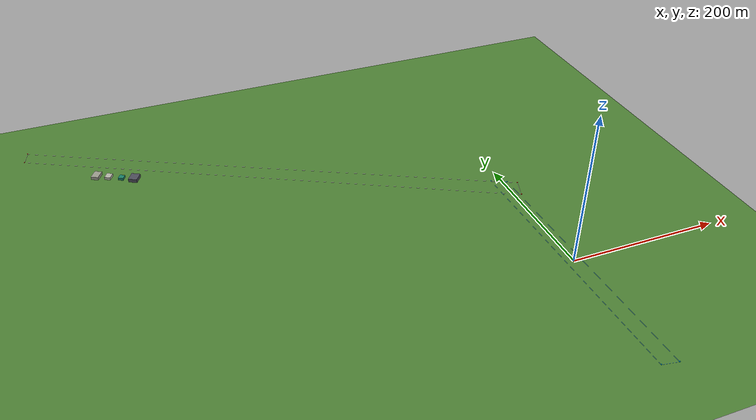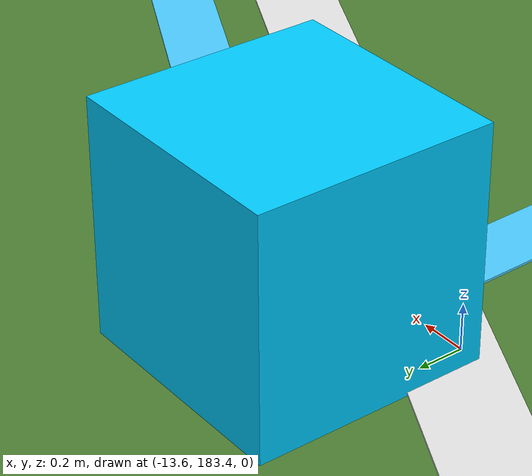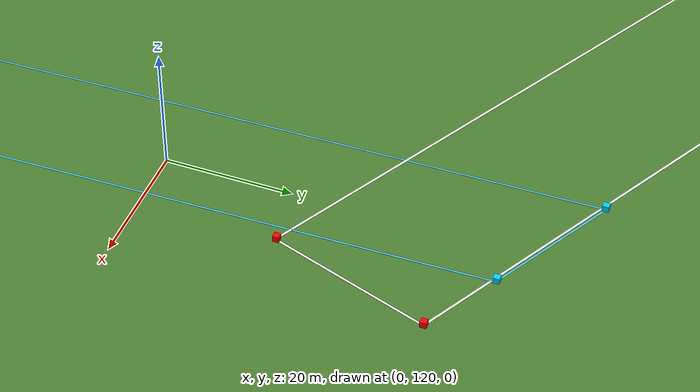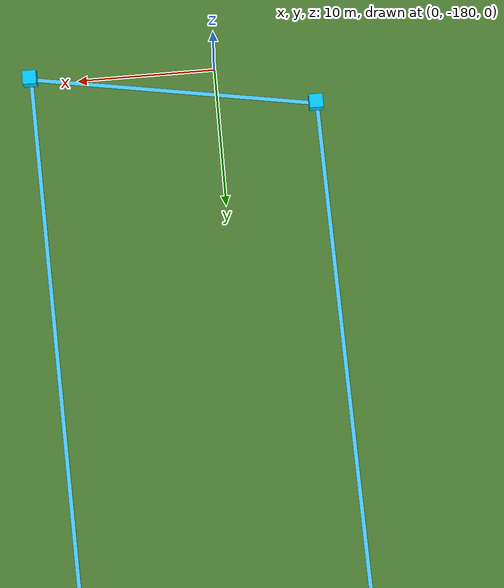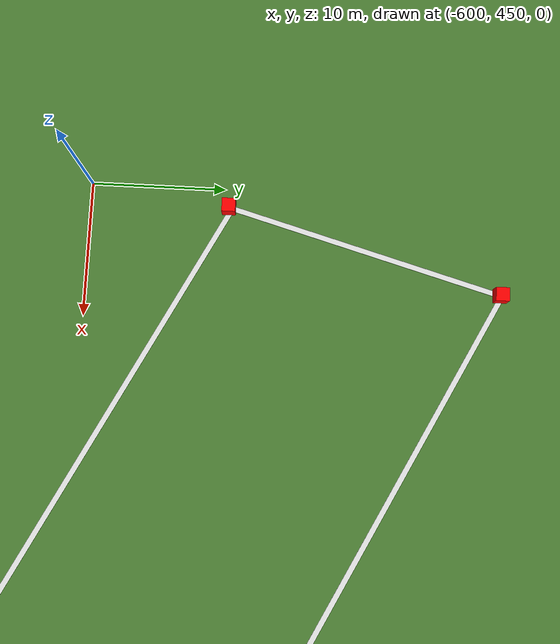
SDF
<?xml version="1.0" ?>
<sdf version="1.8">
    <world name="map">
        <physics name="1ms" type="ignored">
            <max_step_size>0.001</max_step_size>
            <real_time_factor>1.0</real_time_factor>
        </physics>

        <plugin filename="libgz-sim-physics-system.so" name="gz::sim::systems::Physics">
        </plugin>
        <plugin filename="libgz-sim-user-commands-system.so" name="gz::sim::systems::UserCommands">
        </plugin>
        <plugin filename="libgz-sim-scene-broadcaster-system.so" name="gz::sim::systems::SceneBroadcaster">
        </plugin>

        <plugin filename="libgz-sim-navsat-system" name="gz::sim::systems::NavSat">
        </plugin>
        <plugin filename="libgz-sim-imu-system.so" name="gz::sim::systems::Imu">
        </plugin>

        <!-- CDS2 airstrip — Disley, Saskatchewan -->
        <!-- Origin MUST match navsat_transform datum for visual/toolpath alignment -->
        <spherical_coordinates>
            <surface_model>EARTH_WGS84</surface_model>
            <world_frame_orientation>ENU</world_frame_orientation>
            <latitude_deg>50.63447</latitude_deg>
            <longitude_deg>-105.03184</longitude_deg>
            <elevation>566</elevation>
            <heading_deg>0</heading_deg>
        </spherical_coordinates>

        <light type="directional" name="sun">
            <cast_shadows>true</cast_shadows>
            <pose>0 0 10 0 0 0</pose>
            <diffuse>0.8 0.8 0.8 1</diffuse>
            <specular>0.2 0.2 0.2 1</specular>
            <direction>-0.5 0.1 -0.9</direction>
        </light>

        <!-- Ground plane — flat grass field -->
        <model name="ground_plane">
            <static>true</static>
            <link name="link">
                <collision name="collision">
                    <geometry>
                        <plane>
                            <normal>0 0 1</normal>
                            <size>2000 2000</size>
                        </plane>
                    </geometry>
                    <surface>
                        <friction>
                            <ode>
                                <mu>1.0</mu>
                                <mu2>1.0</mu2>
                            </ode>
                        </friction>
                    </surface>
                </collision>
                <visual name="visual">
                    <geometry>
                        <plane>
                            <normal>0 0 1</normal>
                            <size>2000 2000</size>
                        </plane>
                    </geometry>
                    <material>
                        <ambient>0.3 0.5 0.2 1</ambient>
                        <diffuse>0.3 0.5 0.2 1</diffuse>
                        <specular>0.01 0.01 0.01 1</specular>
                    </material>
                </visual>
            </link>
        </model>

        <!-- Runway 11/29 mowing polygon boundary (approx ENU from datum) -->
        <!-- C1 NW (-598.6, 460.3)  C2 NE (-592.9, 480.6)               -->
        <!-- C4 SW (9.7, 141.7)     C3 SE (18.1, 167.3)                  -->

        <!-- North edge: C2→C3 — length 686.7m, yaw=atan2(-dx,dy) -->
        <model name="edge_north">
            <static>true</static>
            <pose>-287.4 324.0 0.01 0 0 -2.045</pose>
            <link name="link">
                <visual name="visual">
                    <geometry>
                        <box><size>0.4 686.7 0.01</size></box>
                    </geometry>
                    <material>
                        <ambient>0.9 0.9 0.9 1</ambient>
                        <diffuse>0.9 0.9 0.9 1</diffuse>
                    </material>
                </visual>
            </link>
        </model>

        <!-- South edge: C1→C4 — length 686.7m -->
        <model name="edge_south">
            <static>true</static>
            <pose>-294.5 301.0 0.01 0 0 -2.054</pose>
            <link name="link">
                <visual name="visual">
                    <geometry>
                        <box><size>0.4 686.7 0.01</size></box>
                    </geometry>
                    <material>
                        <ambient>0.9 0.9 0.9 1</ambient>
                        <diffuse>0.9 0.9 0.9 1</diffuse>
                    </material>
                </visual>
            </link>
        </model>

        <!-- West end: C1→C2 — length 21.1m -->
        <model name="edge_west">
            <static>true</static>
            <pose>-595.8 470.5 0.01 0 0 -0.274</pose>
            <link name="link">
                <visual name="visual">
                    <geometry>
                        <box><size>0.4 21.1 0.01</size></box>
                    </geometry>
                    <material>
                        <ambient>0.9 0.9 0.9 1</ambient>
                        <diffuse>0.9 0.9 0.9 1</diffuse>
                    </material>
                </visual>
            </link>
        </model>

        <!-- East end: C4→C3 — length 26.9m -->
        <model name="edge_east">
            <static>true</static>
            <pose>13.9 154.5 0.01 0 0 -0.317</pose>
            <link name="link">
                <visual name="visual">
                    <geometry>
                        <box><size>0.4 26.9 0.01</size></box>
                    </geometry>
                    <material>
                        <ambient>0.9 0.9 0.9 1</ambient>
                        <diffuse>0.9 0.9 0.9 1</diffuse>
                    </material>
                </visual>
            </link>
        </model>

        <!-- Corner markers — bright red cubes at polygon corners -->
        <model name="corner_c1_nw">
            <static>true</static>
            <pose>-598.6 460.3 0.5 0 0 0</pose>
            <link name="link">
                <visual name="visual">
                    <geometry><box><size>1 1 1</size></box></geometry>
                    <material>
                        <ambient>1.0 0.0 0.0 1</ambient>
                        <diffuse>1.0 0.0 0.0 1</diffuse>
                    </material>
                </visual>
            </link>
        </model>
        <model name="corner_c2_ne">
            <static>true</static>
            <pose>-592.9 480.6 0.5 0 0 0</pose>
            <link name="link">
                <visual name="visual">
                    <geometry><box><size>1 1 1</size></box></geometry>
                    <material>
                        <ambient>1.0 0.0 0.0 1</ambient>
                        <diffuse>1.0 0.0 0.0 1</diffuse>
                    </material>
                </visual>
            </link>
        </model>
        <model name="corner_c3_se">
            <static>true</static>
            <pose>18.1 167.3 0.5 0 0 0</pose>
            <link name="link">
                <visual name="visual">
                    <geometry><box><size>1 1 1</size></box></geometry>
                    <material>
                        <ambient>1.0 0.0 0.0 1</ambient>
                        <diffuse>1.0 0.0 0.0 1</diffuse>
                    </material>
                </visual>
            </link>
        </model>
        <model name="corner_c4_sw">
            <static>true</static>
            <pose>9.7 141.7 0.5 0 0 0</pose>
            <link name="link">
                <visual name="visual">
                    <geometry><box><size>1 1 1</size></box></geometry>
                    <material>
                        <ambient>1.0 0.0 0.0 1</ambient>
                        <diffuse>1.0 0.0 0.0 1</diffuse>
                    </material>
                </visual>
            </link>
        </model>

        <!-- Hangars — 4 buildings south of runway 11/29, near NW end     -->
        <!-- All NW faces aligned at 22.7m perpendicular from south edge  -->
        <!-- Oriented parallel to runway (heading 120° = yaw -0.52 rad)   -->
        <!-- Order along runway NW→SE: large, middle, green, new          -->

        <!-- Hangar 1 — large, westernmost of original three -->
        <model name="hangar_large">
            <static>true</static>
            <pose>-509.1 387.5 2.25 0 0 -0.52</pose>
            <link name="link">
                <collision name="collision">
                    <geometry><box><size>10 14 4.5</size></box></geometry>
                </collision>
                <visual name="visual">
                    <geometry><box><size>10 14 4.5</size></box></geometry>
                    <material>
                        <ambient>0.6 0.6 0.55 1</ambient>
                        <diffuse>0.6 0.6 0.55 1</diffuse>
                    </material>
                </visual>
            </link>
        </model>

        <!-- Hangar 2 — medium size -->
        <model name="hangar_middle">
            <static>true</static>
            <pose>-494.0 379.6 2.0 0 0 -0.52</pose>
            <link name="link">
                <collision name="collision">
                    <geometry><box><size>8 10 4.0</size></box></geometry>
                </collision>
                <visual name="visual">
                    <geometry><box><size>8 10 4.0</size></box></geometry>
                    <material>
                        <ambient>0.7 0.7 0.65 1</ambient>
                        <diffuse>0.7 0.7 0.65 1</diffuse>
                    </material>
                </visual>
            </link>
        </model>

        <!-- Hangar 3 — green hangar (user's) -->
        <model name="hangar_green">
            <static>true</static>
            <pose>-478.0 371.2 1.75 0 0 -0.52</pose>
            <link name="link">
                <collision name="collision">
                    <geometry><box><size>7 8 3.5</size></box></geometry>
                </collision>
                <visual name="visual">
                    <geometry><box><size>7 8 3.5</size></box></geometry>
                    <material>
                        <ambient>0.1 0.5 0.4 1</ambient>
                        <diffuse>0.1 0.5 0.4 1</diffuse>
                    </material>
                </visual>
            </link>
        </model>

        <!-- Hangar 4 — newest, largest, dark roof -->
        <model name="hangar_new">
            <static>true</static>
            <pose>-462.1 362.9 2.5 0 0 -0.52</pose>
            <link name="link">
                <collision name="collision">
                    <geometry><box><size>12 14 5.0</size></box></geometry>
                </collision>
                <visual name="visual">
                    <geometry><box><size>12 14 5.0</size></box></geometry>
                    <material>
                        <ambient>0.3 0.3 0.35 1</ambient>
                        <diffuse>0.3 0.3 0.35 1</diffuse>
                    </material>
                </visual>
            </link>
        </model>

        <!-- Start/park marker — yellow cube in front of hangar 3 (green) -->
        <!-- 8m toward runway (NW) from hangar center -->
        <model name="start_marker">
            <static>true</static>
            <pose>-474.3 378.3 0.5 0 0 0</pose>
            <link name="link">
                <visual name="visual">
                    <geometry><box><size>1 1 1</size></box></geometry>
                    <material>
                        <ambient>1.0 1.0 0.0 1</ambient>
                        <diffuse>1.0 1.0 0.0 1</diffuse>
                    </material>
                </visual>
            </link>
        </model>

        <!-- Runway 17/35 mowing polygon boundary (approx ENU from datum) -->
        <!-- Runway heading 179° mag, runs almost N-S                     -->

        <!-- West edge: C1→C4 — length 360.8m -->
        <model name="rwy1735_edge_west">
            <static>true</static>
            <pose>-10.2 3.5 0.01 0 0 -3.125</pose>
            <link name="link">
                <visual name="visual">
                    <geometry>
                        <box><size>0.3 360.8 0.01</size></box>
                    </geometry>
                    <material>
                        <ambient>0.3 0.8 1.0 1</ambient>
                        <diffuse>0.3 0.8 1.0 1</diffuse>
                    </material>
                </visual>
            </link>
        </model>

        <!-- East edge: C2→C3 — length 354.7m -->
        <model name="rwy1735_edge_east">
            <static>true</static>
            <pose>9.9 -3.3 0.01 0 0 -3.122</pose>
            <link name="link">
                <visual name="visual">
                    <geometry>
                        <box><size>0.3 354.7 0.01</size></box>
                    </geometry>
                    <material>
                        <ambient>0.3 0.8 1.0 1</ambient>
                        <diffuse>0.3 0.8 1.0 1</diffuse>
                    </material>
                </visual>
            </link>
        </model>

        <!-- North edge: C1→C2 — length 21.9m -->
        <model name="rwy1735_edge_north">
            <static>true</static>
            <pose>-3.5 178.9 0.01 0 0 -2.046</pose>
            <link name="link">
                <visual name="visual">
                    <geometry>
                        <box><size>0.3 21.9 0.01</size></box>
                    </geometry>
                    <material>
                        <ambient>0.3 0.8 1.0 1</ambient>
                        <diffuse>0.3 0.8 1.0 1</diffuse>
                    </material>
                </visual>
            </link>
        </model>

        <!-- South edge: C4→C3 — length 20.8m -->
        <model name="rwy1735_edge_south">
            <static>true</static>
            <pose>3.2 -178.7 0.01 0 0 -1.740</pose>
            <link name="link">
                <visual name="visual">
                    <geometry>
                        <box><size>0.3 20.8 0.01</size></box>
                    </geometry>
                    <material>
                        <ambient>0.3 0.8 1.0 1</ambient>
                        <diffuse>0.3 0.8 1.0 1</diffuse>
                    </material>
                </visual>
            </link>
        </model>

        <!-- Corner markers — cyan cubes at 17/35 polygon corners -->
        <model name="rwy1735_c1_nw">
            <static>true</static>
            <pose>-13.2 183.9 0.5 0 0 0</pose>
            <link name="link">
                <visual name="visual">
                    <geometry><box><size>1 1 1</size></box></geometry>
                    <material>
                        <ambient>0.0 0.8 1.0 1</ambient>
                        <diffuse>0.0 0.8 1.0 1</diffuse>
                    </material>
                </visual>
            </link>
        </model>
        <model name="rwy1735_c2_ne">
            <static>true</static>
            <pose>6.3 173.9 0.5 0 0 0</pose>
            <link name="link">
                <visual name="visual">
                    <geometry><box><size>1 1 1</size></box></geometry>
                    <material>
                        <ambient>0.0 0.8 1.0 1</ambient>
                        <diffuse>0.0 0.8 1.0 1</diffuse>
                    </material>
                </visual>
            </link>
        </model>
        <model name="rwy1735_c3_se">
            <static>true</static>
            <pose>13.4 -180.4 0.5 0 0 0</pose>
            <link name="link">
                <visual name="visual">
                    <geometry><box><size>1 1 1</size></box></geometry>
                    <material>
                        <ambient>0.0 0.8 1.0 1</ambient>
                        <diffuse>0.0 0.8 1.0 1</diffuse>
                    </material>
                </visual>
            </link>
        </model>
        <model name="rwy1735_c4_sw">
            <static>true</static>
            <pose>-7.1 -176.9 0.5 0 0 0</pose>
            <link name="link">
                <visual name="visual">
                    <geometry><box><size>1 1 1</size></box></geometry>
                    <material>
                        <ambient>0.0 0.8 1.0 1</ambient>
                        <diffuse>0.0 0.8 1.0 1</diffuse>
                    </material>
                </visual>
            </link>
        </model>

    </world>
</sdf>
